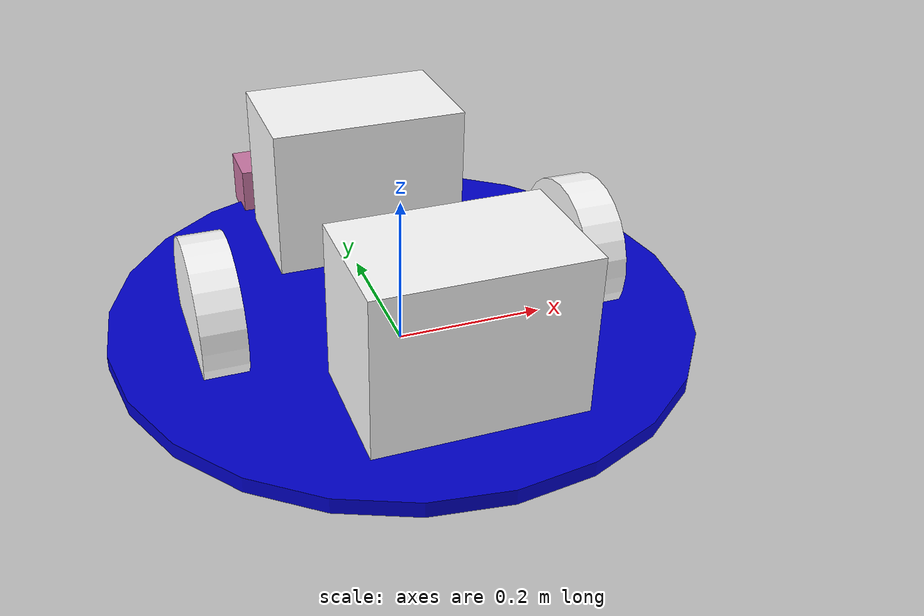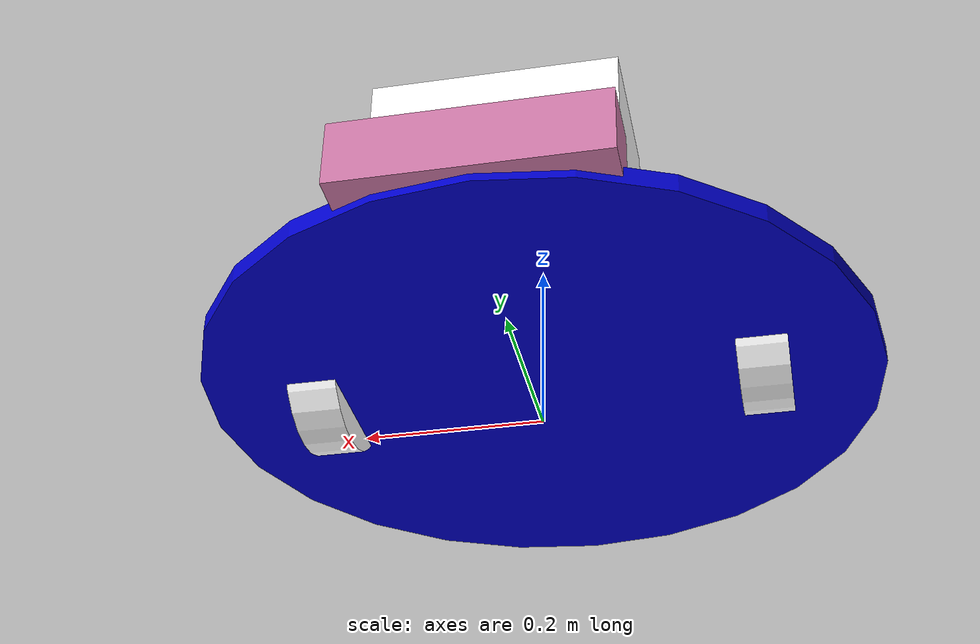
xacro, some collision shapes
<?xml version="1.0"?>
<robot name="agv" xmlns:xacro="http://ros.org/wiki/xacro">

<xacro:property name="M_PI" value="3.1415926535897931" />

<xacro:property name="body_diameter" value="0.75" />
<xacro:property name="body_thickness" value="0.02" />
<xacro:property name="body_height" value="0.045" />

<xacro:property name="wheel_diameter" value="0.19" />
<xacro:property name="wheel_width" value="0.055" />
<xacro:property name="wheel_base_width" value="0.49" />

<xacro:property name="battery_height" value="0.21" />
<xacro:property name="battery_width" value="0.165" />
<xacro:property name="battery_length" value="0.26" />

<material name="blue">
    <color rgba="0 0 0.8 1"/>
</material>

<material name="white">
   <color rgba="1 1 1 1"/>
</material>

<link name="base_link">
</link>

<link name="body_link">
    <visual>
        <geometry>
            <cylinder radius="${body_diameter/2}" length="${body_thickness}"/>
        </geometry>
        <material name="blue"/>
    </visual>
    <collision>
        <geometry>
            <cylinder radius="${body_diameter/2}" length="${body_thickness}"/>
        </geometry>
    </collision>
</link>

<link name="wheel_link_left">
    <visual>
        <geometry>
            <cylinder radius="${wheel_diameter/2}" length="${wheel_width}"/>
        </geometry>
        <material name="white"/>
    </visual>
    <collision>
        <geometry>
            <cylinder radius="${wheel_diameter/2}" length="${wheel_width}"/>
        </geometry>
    </collision>
</link>

<link name="wheel_link_right">
    <visual>
        <geometry>
            <cylinder radius="${wheel_diameter/2}" length="${wheel_width}"/>
        </geometry>
        <material name="white"/>
    </visual>
    <collision>
        <geometry>
            <cylinder radius="${wheel_diameter/2}" length="${wheel_width}"/>
        </geometry>
    </collision>
</link>

<link name="battery1_link">
    <visual>
        <geometry>
            <box size="${battery_width} ${battery_length} ${battery_height}"/>
        </geometry>
        <material name="white"/>
    </visual>
    <collision>
        <geometry>
            <box size="${battery_width} ${battery_length} ${battery_height}"/>
        </geometry>
    </collision>
</link>

<link name="battery2_link">
    <visual>
        <geometry>
            <box size="${battery_width} ${battery_length} ${battery_height}"/>
        </geometry>
        <material name="white"/>
    </visual>
    <collision>
        <geometry>
            <box size="${battery_width} ${battery_length} ${battery_height}"/>
        </geometry>
    </collision>
</link>

<joint name="base_to_body_link" type="fixed">
    <parent link="base_link"/>
    <child link="body_link"/>
    <origin xyz="0 0 ${body_height}"/>
</joint>

<joint name="base_to_wheel_link_left" type="continuous">
    <parent link="base_link"/>
    <child link="wheel_link_left"/>
    <axis xyz="1 0 0"/>
    <origin xyz="${-wheel_base_width/2} 0 ${wheel_diameter/2}" rpy="0 ${M_PI/2} 0"/>
</joint>

<joint name="base_to_wheel_link_right" type="continuous">
    <parent link="base_link"/>
    <child link="wheel_link_right"/>
    <axis xyz="1 0 0"/>
    <origin xyz="${wheel_base_width/2} 0 ${wheel_diameter/2}" rpy="0 ${M_PI/2} 0"/>
</joint>

<joint name="battery1_joint" type="fixed">
 <parent link="base_link"/>
 <child link="battery1_link"/>
 <origin xyz="0 0.2 ${body_height+battery_height/2}" rpy="0 0 ${M_PI/2}"/>
</joint>

<joint name="battery2_joint" type="fixed">
 <parent link="base_link"/>
 <child link="battery2_link"/>
 <origin xyz="0 -0.2 ${body_height+battery_height/2}" rpy="0 0 ${M_PI/2}" />
</joint>

<link name="camera_link">
	<visual>
       		<origin xyz="0 0 0" rpy="0 0 ${M_PI/2}"/>
        	<geometry>
         	<mesh filename="package://agv_description/meshes/sensors/kinect.dae"/>
        	</geometry>
      	</visual>
 	<collision>
        	<origin xyz="0.0 0.0 0.0" rpy="0 0 0"/>
  	    	<geometry>
  	      		<box size="0.07271 0.27794 0.073"/>
  	    	</geometry>
  	</collision>
</link>

<joint name="camera_joint" type="fixed">
      <origin xyz=" 0 0.35 0.08" rpy="0 0 ${M_PI/2}"/>
      <parent link="base_link"/>
      <child link="camera_link"/>
</joint>

</robot>
